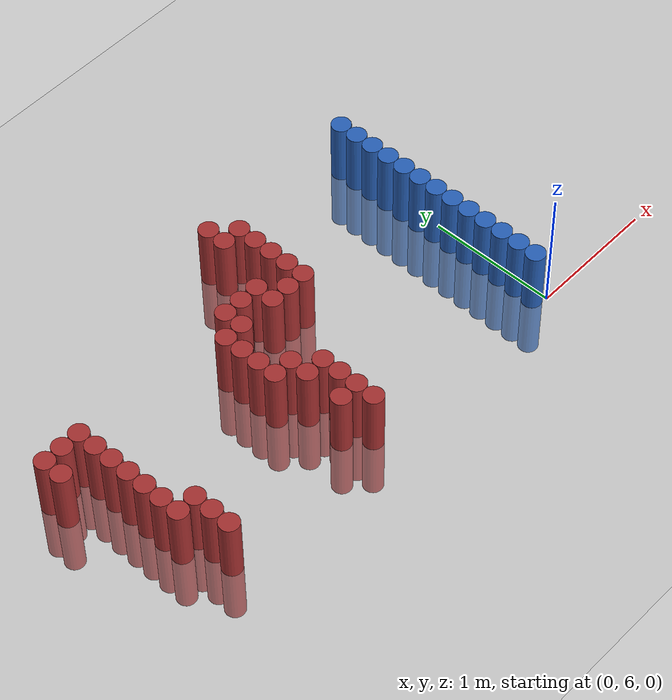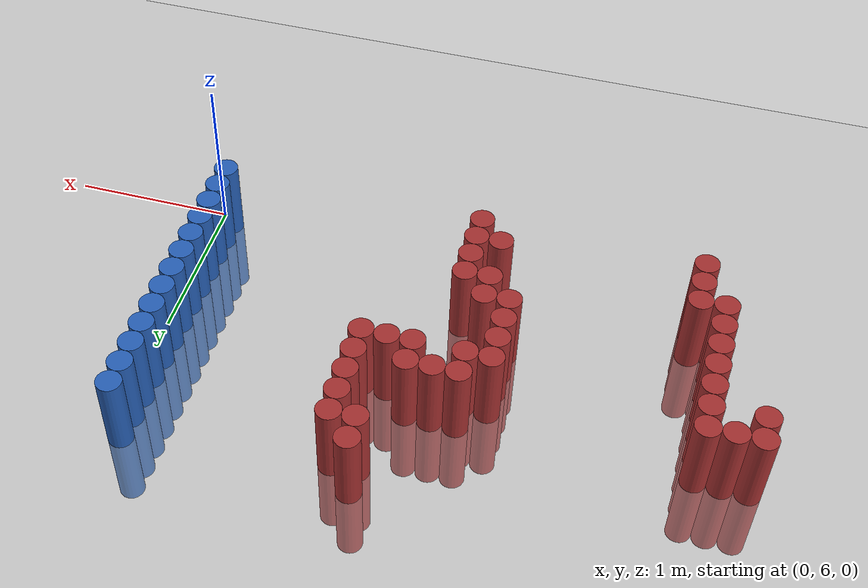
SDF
<sdf version="1.6">
 <world name="default">
  <model name="ground_plane">
   <static>1</static>
   <link name="link">
    <collision name="collision">
     <geometry><plane><normal>0 0 1</normal><size>100 100</size></plane></geometry>
     <surface><friction><ode><mu>100</mu><mu2>50</mu2></ode></friction></surface>
    </collision>
    <visual name="visual">
     <cast_shadows>0</cast_shadows>
     <geometry><plane><normal>0 0 1</normal><size>100 100</size></plane></geometry>
     <material>
      <script><uri>file://media/materials/scripts/gazebo.material</uri><name>Gazebo/Grey</name></script>
     </material>
    </visual>
   </link>
  </model>
  <model name="unit_cylinder_167">
   <static>1</static>
   <pose>-3.525000 7.125000 0.000000 0.000000 0.000000 0.000000</pose>
   <link name="link">
    <inertial>
     <mass>1</mass>
     <inertia><ixx>0.145833</ixx><ixy>0</ixy><ixz>0</ixz><iyy>0.145833</iyy><iyz>0</iyz><izz>0.125</izz></inertia>
    </inertial>
    <collision name="collision">
     <geometry><cylinder><radius>0.075000</radius><length>1</length></cylinder></geometry>
    </collision>
    <visual name="visual">
     <geometry><cylinder><radius>0.075000</radius><length>1</length></cylinder></geometry>
     <material>
      <ambient>0.648000 0.192000 0.192000 1</ambient>
      <diffuse>0.648000 0.192000 0.192000 1</diffuse>
     </material>
     <material>
      <script><name>Gazebo/Grey</name><uri>file://media/materials/scripts/gazebo.material</uri></script>
     </material>
    </visual>
   </link>
  </model>
  <model name="unit_cylinder_168">
   <static>1</static>
   <pose>-3.525000 7.275000 0.000000 0.000000 0.000000 0.000000</pose>
   <link name="link">
    <inertial>
     <mass>1</mass>
     <inertia><ixx>0.145833</ixx><ixy>0</ixy><ixz>0</ixz><iyy>0.145833</iyy><iyz>0</iyz><izz>0.125</izz></inertia>
    </inertial>
    <collision name="collision">
     <geometry><cylinder><radius>0.075000</radius><length>1</length></cylinder></geometry>
    </collision>
    <visual name="visual">
     <geometry><cylinder><radius>0.075000</radius><length>1</length></cylinder></geometry>
     <material>
      <ambient>0.648000 0.192000 0.192000 1</ambient>
      <diffuse>0.648000 0.192000 0.192000 1</diffuse>
     </material>
     <material>
      <script><name>Gazebo/Grey</name><uri>file://media/materials/scripts/gazebo.material</uri></script>
     </material>
    </visual>
   </link>
  </model>
  <model name="unit_cylinder_172">
   <static>1</static>
   <pose>-3.375000 7.275000 0.000000 0.000000 0.000000 0.000000</pose>
   <link name="link">
    <inertial>
     <mass>1</mass>
     <inertia><ixx>0.145833</ixx><ixy>0</ixy><ixz>0</ixz><iyy>0.145833</iyy><iyz>0</iyz><izz>0.125</izz></inertia>
    </inertial>
    <collision name="collision">
     <geometry><cylinder><radius>0.075000</radius><length>1</length></cylinder></geometry>
    </collision>
    <visual name="visual">
     <geometry><cylinder><radius>0.075000</radius><length>1</length></cylinder></geometry>
     <material>
      <ambient>0.648000 0.192000 0.192000 1</ambient>
      <diffuse>0.648000 0.192000 0.192000 1</diffuse>
     </material>
     <material>
      <script><name>Gazebo/Grey</name><uri>file://media/materials/scripts/gazebo.material</uri></script>
     </material>
    </visual>
   </link>
  </model>
  <model name="unit_cylinder_178">
   <static>1</static>
   <pose>-3.225000 6.375000 0.000000 0.000000 0.000000 0.000000</pose>
   <link name="link">
    <inertial>
     <mass>1</mass>
     <inertia><ixx>0.145833</ixx><ixy>0</ixy><ixz>0</ixz><iyy>0.145833</iyy><iyz>0</iyz><izz>0.125</izz></inertia>
    </inertial>
    <collision name="collision">
     <geometry><cylinder><radius>0.075000</radius><length>1</length></cylinder></geometry>
    </collision>
    <visual name="visual">
     <geometry><cylinder><radius>0.075000</radius><length>1</length></cylinder></geometry>
     <material>
      <ambient>0.648000 0.192000 0.192000 1</ambient>
      <diffuse>0.648000 0.192000 0.192000 1</diffuse>
     </material>
     <material>
      <script><name>Gazebo/Grey</name><uri>file://media/materials/scripts/gazebo.material</uri></script>
     </material>
    </visual>
   </link>
  </model>
  <model name="unit_cylinder_179">
   <static>1</static>
   <pose>-3.225000 6.525000 0.000000 0.000000 0.000000 0.000000</pose>
   <link name="link">
    <inertial>
     <mass>1</mass>
     <inertia><ixx>0.145833</ixx><ixy>0</ixy><ixz>0</ixz><iyy>0.145833</iyy><iyz>0</iyz><izz>0.125</izz></inertia>
    </inertial>
    <collision name="collision">
     <geometry><cylinder><radius>0.075000</radius><length>1</length></cylinder></geometry>
    </collision>
    <visual name="visual">
     <geometry><cylinder><radius>0.075000</radius><length>1</length></cylinder></geometry>
     <material>
      <ambient>0.648000 0.192000 0.192000 1</ambient>
      <diffuse>0.648000 0.192000 0.192000 1</diffuse>
     </material>
     <material>
      <script><name>Gazebo/Grey</name><uri>file://media/materials/scripts/gazebo.material</uri></script>
     </material>
    </visual>
   </link>
  </model>
  <model name="unit_cylinder_180">
   <static>1</static>
   <pose>-3.225000 6.675000 0.000000 0.000000 0.000000 0.000000</pose>
   <link name="link">
    <inertial>
     <mass>1</mass>
     <inertia><ixx>0.145833</ixx><ixy>0</ixy><ixz>0</ixz><iyy>0.145833</iyy><iyz>0</iyz><izz>0.125</izz></inertia>
    </inertial>
    <collision name="collision">
     <geometry><cylinder><radius>0.075000</radius><length>1</length></cylinder></geometry>
    </collision>
    <visual name="visual">
     <geometry><cylinder><radius>0.075000</radius><length>1</length></cylinder></geometry>
     <material>
      <ambient>0.648000 0.192000 0.192000 1</ambient>
      <diffuse>0.648000 0.192000 0.192000 1</diffuse>
     </material>
     <material>
      <script><name>Gazebo/Grey</name><uri>file://media/materials/scripts/gazebo.material</uri></script>
     </material>
    </visual>
   </link>
  </model>
  <model name="unit_cylinder_181">
   <static>1</static>
   <pose>-3.225000 6.825000 0.000000 0.000000 0.000000 0.000000</pose>
   <link name="link">
    <inertial>
     <mass>1</mass>
     <inertia><ixx>0.145833</ixx><ixy>0</ixy><ixz>0</ixz><iyy>0.145833</iyy><iyz>0</iyz><izz>0.125</izz></inertia>
    </inertial>
    <collision name="collision">
     <geometry><cylinder><radius>0.075000</radius><length>1</length></cylinder></geometry>
    </collision>
    <visual name="visual">
     <geometry><cylinder><radius>0.075000</radius><length>1</length></cylinder></geometry>
     <material>
      <ambient>0.648000 0.192000 0.192000 1</ambient>
      <diffuse>0.648000 0.192000 0.192000 1</diffuse>
     </material>
     <material>
      <script><name>Gazebo/Grey</name><uri>file://media/materials/scripts/gazebo.material</uri></script>
     </material>
    </visual>
   </link>
  </model>
  <model name="unit_cylinder_182">
   <static>1</static>
   <pose>-3.225000 6.975000 0.000000 0.000000 0.000000 0.000000</pose>
   <link name="link">
    <inertial>
     <mass>1</mass>
     <inertia><ixx>0.145833</ixx><ixy>0</ixy><ixz>0</ixz><iyy>0.145833</iyy><iyz>0</iyz><izz>0.125</izz></inertia>
    </inertial>
    <collision name="collision">
     <geometry><cylinder><radius>0.075000</radius><length>1</length></cylinder></geometry>
    </collision>
    <visual name="visual">
     <geometry><cylinder><radius>0.075000</radius><length>1</length></cylinder></geometry>
     <material>
      <ambient>0.648000 0.192000 0.192000 1</ambient>
      <diffuse>0.648000 0.192000 0.192000 1</diffuse>
     </material>
     <material>
      <script><name>Gazebo/Grey</name><uri>file://media/materials/scripts/gazebo.material</uri></script>
     </material>
    </visual>
   </link>
  </model>
  <model name="unit_cylinder_183">
   <static>1</static>
   <pose>-3.225000 7.125000 0.000000 0.000000 0.000000 0.000000</pose>
   <link name="link">
    <inertial>
     <mass>1</mass>
     <inertia><ixx>0.145833</ixx><ixy>0</ixy><ixz>0</ixz><iyy>0.145833</iyy><iyz>0</iyz><izz>0.125</izz></inertia>
    </inertial>
    <collision name="collision">
     <geometry><cylinder><radius>0.075000</radius><length>1</length></cylinder></geometry>
    </collision>
    <visual name="visual">
     <geometry><cylinder><radius>0.075000</radius><length>1</length></cylinder></geometry>
     <material>
      <ambient>0.648000 0.192000 0.192000 1</ambient>
      <diffuse>0.648000 0.192000 0.192000 1</diffuse>
     </material>
     <material>
      <script><name>Gazebo/Grey</name><uri>file://media/materials/scripts/gazebo.material</uri></script>
     </material>
    </visual>
   </link>
  </model>
  <model name="unit_cylinder_184">
   <static>1</static>
   <pose>-3.225000 7.275000 0.000000 0.000000 0.000000 0.000000</pose>
   <link name="link">
    <inertial>
     <mass>1</mass>
     <inertia><ixx>0.145833</ixx><ixy>0</ixy><ixz>0</ixz><iyy>0.145833</iyy><iyz>0</iyz><izz>0.125</izz></inertia>
    </inertial>
    <collision name="collision">
     <geometry><cylinder><radius>0.075000</radius><length>1</length></cylinder></geometry>
    </collision>
    <visual name="visual">
     <geometry><cylinder><radius>0.075000</radius><length>1</length></cylinder></geometry>
     <material>
      <ambient>0.648000 0.192000 0.192000 1</ambient>
      <diffuse>0.648000 0.192000 0.192000 1</diffuse>
     </material>
     <material>
      <script><name>Gazebo/Grey</name><uri>file://media/materials/scripts/gazebo.material</uri></script>
     </material>
    </visual>
   </link>
  </model>
  <model name="unit_cylinder_193">
   <static>1</static>
   <pose>-3.075000 6.075000 0.000000 0.000000 0.000000 0.000000</pose>
   <link name="link">
    <inertial>
     <mass>1</mass>
     <inertia><ixx>0.145833</ixx><ixy>0</ixy><ixz>0</ixz><iyy>0.145833</iyy><iyz>0</iyz><izz>0.125</izz></inertia>
    </inertial>
    <collision name="collision">
     <geometry><cylinder><radius>0.075000</radius><length>1</length></cylinder></geometry>
    </collision>
    <visual name="visual">
     <geometry><cylinder><radius>0.075000</radius><length>1</length></cylinder></geometry>
     <material>
      <ambient>0.648000 0.192000 0.192000 1</ambient>
      <diffuse>0.648000 0.192000 0.192000 1</diffuse>
     </material>
     <material>
      <script><name>Gazebo/Grey</name><uri>file://media/materials/scripts/gazebo.material</uri></script>
     </material>
    </visual>
   </link>
  </model>
  <model name="unit_cylinder_194">
   <static>1</static>
   <pose>-3.075000 6.225000 0.000000 0.000000 0.000000 0.000000</pose>
   <link name="link">
    <inertial>
     <mass>1</mass>
     <inertia><ixx>0.145833</ixx><ixy>0</ixy><ixz>0</ixz><iyy>0.145833</iyy><iyz>0</iyz><izz>0.125</izz></inertia>
    </inertial>
    <collision name="collision">
     <geometry><cylinder><radius>0.075000</radius><length>1</length></cylinder></geometry>
    </collision>
    <visual name="visual">
     <geometry><cylinder><radius>0.075000</radius><length>1</length></cylinder></geometry>
     <material>
      <ambient>0.648000 0.192000 0.192000 1</ambient>
      <diffuse>0.648000 0.192000 0.192000 1</diffuse>
     </material>
     <material>
      <script><name>Gazebo/Grey</name><uri>file://media/materials/scripts/gazebo.material</uri></script>
     </material>
    </visual>
   </link>
  </model>
  <model name="unit_cylinder_195">
   <static>1</static>
   <pose>-3.075000 6.375000 0.000000 0.000000 0.000000 0.000000</pose>
   <link name="link">
    <inertial>
     <mass>1</mass>
     <inertia><ixx>0.145833</ixx><ixy>0</ixy><ixz>0</ixz><iyy>0.145833</iyy><iyz>0</iyz><izz>0.125</izz></inertia>
    </inertial>
    <collision name="collision">
     <geometry><cylinder><radius>0.075000</radius><length>1</length></cylinder></geometry>
    </collision>
    <visual name="visual">
     <geometry><cylinder><radius>0.075000</radius><length>1</length></cylinder></geometry>
     <material>
      <ambient>0.648000 0.192000 0.192000 1</ambient>
      <diffuse>0.648000 0.192000 0.192000 1</diffuse>
     </material>
     <material>
      <script><name>Gazebo/Grey</name><uri>file://media/materials/scripts/gazebo.material</uri></script>
     </material>
    </visual>
   </link>
  </model>
  <model name="unit_cylinder_205">
   <static>1</static>
   <pose>-2.025000 6.675000 0.000000 0.000000 0.000000 0.000000</pose>
   <link name="link">
    <inertial>
     <mass>1</mass>
     <inertia><ixx>0.145833</ixx><ixy>0</ixy><ixz>0</ixz><iyy>0.145833</iyy><iyz>0</iyz><izz>0.125</izz></inertia>
    </inertial>
    <collision name="collision">
     <geometry><cylinder><radius>0.075000</radius><length>1</length></cylinder></geometry>
    </collision>
    <visual name="visual">
     <geometry><cylinder><radius>0.075000</radius><length>1</length></cylinder></geometry>
     <material>
      <ambient>0.648000 0.192000 0.192000 1</ambient>
      <diffuse>0.648000 0.192000 0.192000 1</diffuse>
     </material>
     <material>
      <script><name>Gazebo/Grey</name><uri>file://media/materials/scripts/gazebo.material</uri></script>
     </material>
    </visual>
   </link>
  </model>
  <model name="unit_cylinder_206">
   <static>1</static>
   <pose>-2.025000 6.825000 0.000000 0.000000 0.000000 0.000000</pose>
   <link name="link">
    <inertial>
     <mass>1</mass>
     <inertia><ixx>0.145833</ixx><ixy>0</ixy><ixz>0</ixz><iyy>0.145833</iyy><iyz>0</iyz><izz>0.125</izz></inertia>
    </inertial>
    <collision name="collision">
     <geometry><cylinder><radius>0.075000</radius><length>1</length></cylinder></geometry>
    </collision>
    <visual name="visual">
     <geometry><cylinder><radius>0.075000</radius><length>1</length></cylinder></geometry>
     <material>
      <ambient>0.648000 0.192000 0.192000 1</ambient>
      <diffuse>0.648000 0.192000 0.192000 1</diffuse>
     </material>
     <material>
      <script><name>Gazebo/Grey</name><uri>file://media/materials/scripts/gazebo.material</uri></script>
     </material>
    </visual>
   </link>
  </model>
  <model name="unit_cylinder_207">
   <static>1</static>
   <pose>-2.025000 6.975000 0.000000 0.000000 0.000000 0.000000</pose>
   <link name="link">
    <inertial>
     <mass>1</mass>
     <inertia><ixx>0.145833</ixx><ixy>0</ixy><ixz>0</ixz><iyy>0.145833</iyy><iyz>0</iyz><izz>0.125</izz></inertia>
    </inertial>
    <collision name="collision">
     <geometry><cylinder><radius>0.075000</radius><length>1</length></cylinder></geometry>
    </collision>
    <visual name="visual">
     <geometry><cylinder><radius>0.075000</radius><length>1</length></cylinder></geometry>
     <material>
      <ambient>0.648000 0.192000 0.192000 1</ambient>
      <diffuse>0.648000 0.192000 0.192000 1</diffuse>
     </material>
     <material>
      <script><name>Gazebo/Grey</name><uri>file://media/materials/scripts/gazebo.material</uri></script>
     </material>
    </visual>
   </link>
  </model>
  <model name="unit_cylinder_208">
   <static>1</static>
   <pose>-2.025000 7.125000 0.000000 0.000000 0.000000 0.000000</pose>
   <link name="link">
    <inertial>
     <mass>1</mass>
     <inertia><ixx>0.145833</ixx><ixy>0</ixy><ixz>0</ixz><iyy>0.145833</iyy><iyz>0</iyz><izz>0.125</izz></inertia>
    </inertial>
    <collision name="collision">
     <geometry><cylinder><radius>0.075000</radius><length>1</length></cylinder></geometry>
    </collision>
    <visual name="visual">
     <geometry><cylinder><radius>0.075000</radius><length>1</length></cylinder></geometry>
     <material>
      <ambient>0.648000 0.192000 0.192000 1</ambient>
      <diffuse>0.648000 0.192000 0.192000 1</diffuse>
     </material>
     <material>
      <script><name>Gazebo/Grey</name><uri>file://media/materials/scripts/gazebo.material</uri></script>
     </material>
    </visual>
   </link>
  </model>
  <model name="unit_cylinder_213">
   <static>1</static>
   <pose>-1.875000 6.225000 0.000000 0.000000 0.000000 0.000000</pose>
   <link name="link">
    <inertial>
     <mass>1</mass>
     <inertia><ixx>0.145833</ixx><ixy>0</ixy><ixz>0</ixz><iyy>0.145833</iyy><iyz>0</iyz><izz>0.125</izz></inertia>
    </inertial>
    <collision name="collision">
     <geometry><cylinder><radius>0.075000</radius><length>1</length></cylinder></geometry>
    </collision>
    <visual name="visual">
     <geometry><cylinder><radius>0.075000</radius><length>1</length></cylinder></geometry>
     <material>
      <ambient>0.648000 0.192000 0.192000 1</ambient>
      <diffuse>0.648000 0.192000 0.192000 1</diffuse>
     </material>
     <material>
      <script><name>Gazebo/Grey</name><uri>file://media/materials/scripts/gazebo.material</uri></script>
     </material>
    </visual>
   </link>
  </model>
  <model name="unit_cylinder_214">
   <static>1</static>
   <pose>-1.875000 6.525000 0.000000 0.000000 0.000000 0.000000</pose>
   <link name="link">
    <inertial>
     <mass>1</mass>
     <inertia><ixx>0.145833</ixx><ixy>0</ixy><ixz>0</ixz><iyy>0.145833</iyy><iyz>0</iyz><izz>0.125</izz></inertia>
    </inertial>
    <collision name="collision">
     <geometry><cylinder><radius>0.075000</radius><length>1</length></cylinder></geometry>
    </collision>
    <visual name="visual">
     <geometry><cylinder><radius>0.075000</radius><length>1</length></cylinder></geometry>
     <material>
      <ambient>0.648000 0.192000 0.192000 1</ambient>
      <diffuse>0.648000 0.192000 0.192000 1</diffuse>
     </material>
     <material>
      <script><name>Gazebo/Grey</name><uri>file://media/materials/scripts/gazebo.material</uri></script>
     </material>
    </visual>
   </link>
  </model>
  <model name="unit_cylinder_215">
   <static>1</static>
   <pose>-1.875000 6.675000 0.000000 0.000000 0.000000 0.000000</pose>
   <link name="link">
    <inertial>
     <mass>1</mass>
     <inertia><ixx>0.145833</ixx><ixy>0</ixy><ixz>0</ixz><iyy>0.145833</iyy><iyz>0</iyz><izz>0.125</izz></inertia>
    </inertial>
    <collision name="collision">
     <geometry><cylinder><radius>0.075000</radius><length>1</length></cylinder></geometry>
    </collision>
    <visual name="visual">
     <geometry><cylinder><radius>0.075000</radius><length>1</length></cylinder></geometry>
     <material>
      <ambient>0.648000 0.192000 0.192000 1</ambient>
      <diffuse>0.648000 0.192000 0.192000 1</diffuse>
     </material>
     <material>
      <script><name>Gazebo/Grey</name><uri>file://media/materials/scripts/gazebo.material</uri></script>
     </material>
    </visual>
   </link>
  </model>
  <model name="unit_cylinder_216">
   <static>1</static>
   <pose>-1.875000 7.125000 0.000000 0.000000 0.000000 0.000000</pose>
   <link name="link">
    <inertial>
     <mass>1</mass>
     <inertia><ixx>0.145833</ixx><ixy>0</ixy><ixz>0</ixz><iyy>0.145833</iyy><iyz>0</iyz><izz>0.125</izz></inertia>
    </inertial>
    <collision name="collision">
     <geometry><cylinder><radius>0.075000</radius><length>1</length></cylinder></geometry>
    </collision>
    <visual name="visual">
     <geometry><cylinder><radius>0.075000</radius><length>1</length></cylinder></geometry>
     <material>
      <ambient>0.648000 0.192000 0.192000 1</ambient>
      <diffuse>0.648000 0.192000 0.192000 1</diffuse>
     </material>
     <material>
      <script><name>Gazebo/Grey</name><uri>file://media/materials/scripts/gazebo.material</uri></script>
     </material>
    </visual>
   </link>
  </model>
  <model name="unit_cylinder_217">
   <static>1</static>
   <pose>-1.875000 7.275000 0.000000 0.000000 0.000000 0.000000</pose>
   <link name="link">
    <inertial>
     <mass>1</mass>
     <inertia><ixx>0.145833</ixx><ixy>0</ixy><ixz>0</ixz><iyy>0.145833</iyy><iyz>0</iyz><izz>0.125</izz></inertia>
    </inertial>
    <collision name="collision">
     <geometry><cylinder><radius>0.075000</radius><length>1</length></cylinder></geometry>
    </collision>
    <visual name="visual">
     <geometry><cylinder><radius>0.075000</radius><length>1</length></cylinder></geometry>
     <material>
      <ambient>0.648000 0.192000 0.192000 1</ambient>
      <diffuse>0.648000 0.192000 0.192000 1</diffuse>
     </material>
     <material>
      <script><name>Gazebo/Grey</name><uri>file://media/materials/scripts/gazebo.material</uri></script>
     </material>
    </visual>
   </link>
  </model>
  <model name="unit_cylinder_222">
   <static>1</static>
   <pose>-1.725000 6.075000 0.000000 0.000000 0.000000 0.000000</pose>
   <link name="link">
    <inertial>
     <mass>1</mass>
     <inertia><ixx>0.145833</ixx><ixy>0</ixy><ixz>0</ixz><iyy>0.145833</iyy><iyz>0</iyz><izz>0.125</izz></inertia>
    </inertial>
    <collision name="collision">
     <geometry><cylinder><radius>0.075000</radius><length>1</length></cylinder></geometry>
    </collision>
    <visual name="visual">
     <geometry><cylinder><radius>0.075000</radius><length>1</length></cylinder></geometry>
     <material>
      <ambient>0.648000 0.192000 0.192000 1</ambient>
      <diffuse>0.648000 0.192000 0.192000 1</diffuse>
     </material>
     <material>
      <script><name>Gazebo/Grey</name><uri>file://media/materials/scripts/gazebo.material</uri></script>
     </material>
    </visual>
   </link>
  </model>
  <model name="unit_cylinder_223">
   <static>1</static>
   <pose>-1.725000 6.225000 0.000000 0.000000 0.000000 0.000000</pose>
   <link name="link">
    <inertial>
     <mass>1</mass>
     <inertia><ixx>0.145833</ixx><ixy>0</ixy><ixz>0</ixz><iyy>0.145833</iyy><iyz>0</iyz><izz>0.125</izz></inertia>
    </inertial>
    <collision name="collision">
     <geometry><cylinder><radius>0.075000</radius><length>1</length></cylinder></geometry>
    </collision>
    <visual name="visual">
     <geometry><cylinder><radius>0.075000</radius><length>1</length></cylinder></geometry>
     <material>
      <ambient>0.648000 0.192000 0.192000 1</ambient>
      <diffuse>0.648000 0.192000 0.192000 1</diffuse>
     </material>
     <material>
      <script><name>Gazebo/Grey</name><uri>file://media/materials/scripts/gazebo.material</uri></script>
     </material>
    </visual>
   </link>
  </model>
  <model name="unit_cylinder_224">
   <static>1</static>
   <pose>-1.725000 6.375000 0.000000 0.000000 0.000000 0.000000</pose>
   <link name="link">
    <inertial>
     <mass>1</mass>
     <inertia><ixx>0.145833</ixx><ixy>0</ixy><ixz>0</ixz><iyy>0.145833</iyy><iyz>0</iyz><izz>0.125</izz></inertia>
    </inertial>
    <collision name="collision">
     <geometry><cylinder><radius>0.075000</radius><length>1</length></cylinder></geometry>
    </collision>
    <visual name="visual">
     <geometry><cylinder><radius>0.075000</radius><length>1</length></cylinder></geometry>
     <material>
      <ambient>0.648000 0.192000 0.192000 1</ambient>
      <diffuse>0.648000 0.192000 0.192000 1</diffuse>
     </material>
     <material>
      <script><name>Gazebo/Grey</name><uri>file://media/materials/scripts/gazebo.material</uri></script>
     </material>
    </visual>
   </link>
  </model>
  <model name="unit_cylinder_225">
   <static>1</static>
   <pose>-1.725000 6.525000 0.000000 0.000000 0.000000 0.000000</pose>
   <link name="link">
    <inertial>
     <mass>1</mass>
     <inertia><ixx>0.145833</ixx><ixy>0</ixy><ixz>0</ixz><iyy>0.145833</iyy><iyz>0</iyz><izz>0.125</izz></inertia>
    </inertial>
    <collision name="collision">
     <geometry><cylinder><radius>0.075000</radius><length>1</length></cylinder></geometry>
    </collision>
    <visual name="visual">
     <geometry><cylinder><radius>0.075000</radius><length>1</length></cylinder></geometry>
     <material>
      <ambient>0.648000 0.192000 0.192000 1</ambient>
      <diffuse>0.648000 0.192000 0.192000 1</diffuse>
     </material>
     <material>
      <script><name>Gazebo/Grey</name><uri>file://media/materials/scripts/gazebo.material</uri></script>
     </material>
    </visual>
   </link>
  </model>
  <model name="unit_cylinder_226">
   <static>1</static>
   <pose>-1.725000 7.275000 0.000000 0.000000 0.000000 0.000000</pose>
   <link name="link">
    <inertial>
     <mass>1</mass>
     <inertia><ixx>0.145833</ixx><ixy>0</ixy><ixz>0</ixz><iyy>0.145833</iyy><iyz>0</iyz><izz>0.125</izz></inertia>
    </inertial>
    <collision name="collision">
     <geometry><cylinder><radius>0.075000</radius><length>1</length></cylinder></geometry>
    </collision>
    <visual name="visual">
     <geometry><cylinder><radius>0.075000</radius><length>1</length></cylinder></geometry>
     <material>
      <ambient>0.648000 0.192000 0.192000 1</ambient>
      <diffuse>0.648000 0.192000 0.192000 1</diffuse>
     </material>
     <material>
      <script><name>Gazebo/Grey</name><uri>file://media/materials/scripts/gazebo.material</uri></script>
     </material>
    </visual>
   </link>
  </model>
  <model name="unit_cylinder_230">
   <static>1</static>
   <pose>-1.575000 7.125000 0.000000 0.000000 0.000000 0.000000</pose>
   <link name="link">
    <inertial>
     <mass>1</mass>
     <inertia><ixx>0.145833</ixx><ixy>0</ixy><ixz>0</ixz><iyy>0.145833</iyy><iyz>0</iyz><izz>0.125</izz></inertia>
    </inertial>
    <collision name="collision">
     <geometry><cylinder><radius>0.075000</radius><length>1</length></cylinder></geometry>
    </collision>
    <visual name="visual">
     <geometry><cylinder><radius>0.075000</radius><length>1</length></cylinder></geometry>
     <material>
      <ambient>0.648000 0.192000 0.192000 1</ambient>
      <diffuse>0.648000 0.192000 0.192000 1</diffuse>
     </material>
     <material>
      <script><name>Gazebo/Grey</name><uri>file://media/materials/scripts/gazebo.material</uri></script>
     </material>
    </visual>
   </link>
  </model>
  <model name="unit_cylinder_231">
   <static>1</static>
   <pose>-1.575000 7.275000 0.000000 0.000000 0.000000 0.000000</pose>
   <link name="link">
    <inertial>
     <mass>1</mass>
     <inertia><ixx>0.145833</ixx><ixy>0</ixy><ixz>0</ixz><iyy>0.145833</iyy><iyz>0</iyz><izz>0.125</izz></inertia>
    </inertial>
    <collision name="collision">
     <geometry><cylinder><radius>0.075000</radius><length>1</length></cylinder></geometry>
    </collision>
    <visual name="visual">
     <geometry><cylinder><radius>0.075000</radius><length>1</length></cylinder></geometry>
     <material>
      <ambient>0.648000 0.192000 0.192000 1</ambient>
      <diffuse>0.648000 0.192000 0.192000 1</diffuse>
     </material>
     <material>
      <script><name>Gazebo/Grey</name><uri>file://media/materials/scripts/gazebo.material</uri></script>
     </material>
    </visual>
   </link>
  </model>
  <model name="unit_cylinder_238">
   <static>1</static>
   <pose>-1.425000 7.125000 0.000000 0.000000 0.000000 0.000000</pose>
   <link name="link">
    <inertial>
     <mass>1</mass>
     <inertia><ixx>0.145833</ixx><ixy>0</ixy><ixz>0</ixz><iyy>0.145833</iyy><iyz>0</iyz><izz>0.125</izz></inertia>
    </inertial>
    <collision name="collision">
     <geometry><cylinder><radius>0.075000</radius><length>1</length></cylinder></geometry>
    </collision>
    <visual name="visual">
     <geometry><cylinder><radius>0.075000</radius><length>1</length></cylinder></geometry>
     <material>
      <ambient>0.648000 0.192000 0.192000 1</ambient>
      <diffuse>0.648000 0.192000 0.192000 1</diffuse>
     </material>
     <material>
      <script><name>Gazebo/Grey</name><uri>file://media/materials/scripts/gazebo.material</uri></script>
     </material>
    </visual>
   </link>
  </model>
  <model name="unit_cylinder_239">
   <static>1</static>
   <pose>-1.425000 7.725000 0.000000 0.000000 0.000000 0.000000</pose>
   <link name="link">
    <inertial>
     <mass>1</mass>
     <inertia><ixx>0.145833</ixx><ixy>0</ixy><ixz>0</ixz><iyy>0.145833</iyy><iyz>0</iyz><izz>0.125</izz></inertia>
    </inertial>
    <collision name="collision">
     <geometry><cylinder><radius>0.075000</radius><length>1</length></cylinder></geometry>
    </collision>
    <visual name="visual">
     <geometry><cylinder><radius>0.075000</radius><length>1</length></cylinder></geometry>
     <material>
      <ambient>0.648000 0.192000 0.192000 1</ambient>
      <diffuse>0.648000 0.192000 0.192000 1</diffuse>
     </material>
     <material>
      <script><name>Gazebo/Grey</name><uri>file://media/materials/scripts/gazebo.material</uri></script>
     </material>
    </visual>
   </link>
  </model>
  <model name="unit_cylinder_240">
   <static>1</static>
   <pose>-1.425000 7.875000 0.000000 0.000000 0.000000 0.000000</pose>
   <link name="link">
    <inertial>
     <mass>1</mass>
     <inertia><ixx>0.145833</ixx><ixy>0</ixy><ixz>0</ixz><iyy>0.145833</iyy><iyz>0</iyz><izz>0.125</izz></inertia>
    </inertial>
    <collision name="collision">
     <geometry><cylinder><radius>0.075000</radius><length>1</length></cylinder></geometry>
    </collision>
    <visual name="visual">
     <geometry><cylinder><radius>0.075000</radius><length>1</length></cylinder></geometry>
     <material>
      <ambient>0.648000 0.192000 0.192000 1</ambient>
      <diffuse>0.648000 0.192000 0.192000 1</diffuse>
     </material>
     <material>
      <script><name>Gazebo/Grey</name><uri>file://media/materials/scripts/gazebo.material</uri></script>
     </material>
    </visual>
   </link>
  </model>
  <model name="unit_cylinder_250">
   <static>1</static>
   <pose>-1.275000 7.125000 0.000000 0.000000 0.000000 0.000000</pose>
   <link name="link">
    <inertial>
     <mass>1</mass>
     <inertia><ixx>0.145833</ixx><ixy>0</ixy><ixz>0</ixz><iyy>0.145833</iyy><iyz>0</iyz><izz>0.125</izz></inertia>
    </inertial>
    <collision name="collision">
     <geometry><cylinder><radius>0.075000</radius><length>1</length></cylinder></geometry>
    </collision>
    <visual name="visual">
     <geometry><cylinder><radius>0.075000</radius><length>1</length></cylinder></geometry>
     <material>
      <ambient>0.648000 0.192000 0.192000 1</ambient>
      <diffuse>0.648000 0.192000 0.192000 1</diffuse>
     </material>
     <material>
      <script><name>Gazebo/Grey</name><uri>file://media/materials/scripts/gazebo.material</uri></script>
     </material>
    </visual>
   </link>
  </model>
  <model name="unit_cylinder_251">
   <static>1</static>
   <pose>-1.275000 7.275000 0.000000 0.000000 0.000000 0.000000</pose>
   <link name="link">
    <inertial>
     <mass>1</mass>
     <inertia><ixx>0.145833</ixx><ixy>0</ixy><ixz>0</ixz><iyy>0.145833</iyy><iyz>0</iyz><izz>0.125</izz></inertia>
    </inertial>
    <collision name="collision">
     <geometry><cylinder><radius>0.075000</radius><length>1</length></cylinder></geometry>
    </collision>
    <visual name="visual">
     <geometry><cylinder><radius>0.075000</radius><length>1</length></cylinder></geometry>
     <material>
      <ambient>0.648000 0.192000 0.192000 1</ambient>
      <diffuse>0.648000 0.192000 0.192000 1</diffuse>
     </material>
     <material>
      <script><name>Gazebo/Grey</name><uri>file://media/materials/scripts/gazebo.material</uri></script>
     </material>
    </visual>
   </link>
  </model>
  <model name="unit_cylinder_252">
   <static>1</static>
   <pose>-1.275000 7.425000 0.000000 0.000000 0.000000 0.000000</pose>
   <link name="link">
    <inertial>
     <mass>1</mass>
     <inertia><ixx>0.145833</ixx><ixy>0</ixy><ixz>0</ixz><iyy>0.145833</iyy><iyz>0</iyz><izz>0.125</izz></inertia>
    </inertial>
    <collision name="collision">
     <geometry><cylinder><radius>0.075000</radius><length>1</length></cylinder></geometry>
    </collision>
    <visual name="visual">
     <geometry><cylinder><radius>0.075000</radius><length>1</length></cylinder></geometry>
     <material>
      <ambient>0.648000 0.192000 0.192000 1</ambient>
      <diffuse>0.648000 0.192000 0.192000 1</diffuse>
     </material>
     <material>
      <script><name>Gazebo/Grey</name><uri>file://media/materials/scripts/gazebo.material</uri></script>
     </material>
    </visual>
   </link>
  </model>
  <model name="unit_cylinder_253">
   <static>1</static>
   <pose>-1.275000 7.575000 0.000000 0.000000 0.000000 0.000000</pose>
   <link name="link">
    <inertial>
     <mass>1</mass>
     <inertia><ixx>0.145833</ixx><ixy>0</ixy><ixz>0</ixz><iyy>0.145833</iyy><iyz>0</iyz><izz>0.125</izz></inertia>
    </inertial>
    <collision name="collision">
     <geometry><cylinder><radius>0.075000</radius><length>1</length></cylinder></geometry>
    </collision>
    <visual name="visual">
     <geometry><cylinder><radius>0.075000</radius><length>1</length></cylinder></geometry>
     <material>
      <ambient>0.648000 0.192000 0.192000 1</ambient>
      <diffuse>0.648000 0.192000 0.192000 1</diffuse>
     </material>
     <material>
      <script><name>Gazebo/Grey</name><uri>file://media/materials/scripts/gazebo.material</uri></script>
     </material>
    </visual>
   </link>
  </model>
  <model name="unit_cylinder_254">
   <static>1</static>
   <pose>-1.275000 7.725000 0.000000 0.000000 0.000000 0.000000</pose>
   <link name="link">
    <inertial>
     <mass>1</mass>
     <inertia><ixx>0.145833</ixx><ixy>0</ixy><ixz>0</ixz><iyy>0.145833</iyy><iyz>0</iyz><izz>0.125</izz></inertia>
    </inertial>
    <collision name="collision">
     <geometry><cylinder><radius>0.075000</radius><length>1</length></cylinder></geometry>
    </collision>
    <visual name="visual">
     <geometry><cylinder><radius>0.075000</radius><length>1</length></cylinder></geometry>
     <material>
      <ambient>0.648000 0.192000 0.192000 1</ambient>
      <diffuse>0.648000 0.192000 0.192000 1</diffuse>
     </material>
     <material>
      <script><name>Gazebo/Grey</name><uri>file://media/materials/scripts/gazebo.material</uri></script>
     </material>
    </visual>
   </link>
  </model>
  <model name="unit_cylinder_276">
   <static>1</static>
   <pose>-0.075000 6.075000 0.000000 0.000000 0.000000 0.000000</pose>
   <link name="link">
    <inertial>
     <mass>1</mass>
     <inertia><ixx>0.145833</ixx><ixy>0</ixy><ixz>0</ixz><iyy>0.145833</iyy><iyz>0</iyz><izz>0.125</izz></inertia>
    </inertial>
    <collision name="collision">
     <geometry><cylinder><radius>0.075000</radius><length>1</length></cylinder></geometry>
    </collision>
    <visual name="visual">
     <geometry><cylinder><radius>0.075000</radius><length>1</length></cylinder></geometry>
     <material>
      <ambient>0.152000 0.379000 0.720000 1</ambient>
      <diffuse>0.152000 0.379000 0.720000 1</diffuse>
     </material>
     <material>
      <script><name>Gazebo/Grey</name><uri>file://media/materials/scripts/gazebo.material</uri></script>
     </material>
    </visual>
   </link>
  </model>
  <model name="unit_cylinder_277">
   <static>1</static>
   <pose>-0.075000 6.225000 0.000000 0.000000 0.000000 0.000000</pose>
   <link name="link">
    <inertial>
     <mass>1</mass>
     <inertia><ixx>0.145833</ixx><ixy>0</ixy><ixz>0</ixz><iyy>0.145833</iyy><iyz>0</iyz><izz>0.125</izz></inertia>
    </inertial>
    <collision name="collision">
     <geometry><cylinder><radius>0.075000</radius><length>1</length></cylinder></geometry>
    </collision>
    <visual name="visual">
     <geometry><cylinder><radius>0.075000</radius><length>1</length></cylinder></geometry>
     <material>
      <ambient>0.152000 0.379000 0.720000 1</ambient>
      <diffuse>0.152000 0.379000 0.720000 1</diffuse>
     </material>
     <material>
      <script><name>Gazebo/Grey</name><uri>file://media/materials/scripts/gazebo.material</uri></script>
     </material>
    </visual>
   </link>
  </model>
  <model name="unit_cylinder_278">
   <static>1</static>
   <pose>-0.075000 6.375000 0.000000 0.000000 0.000000 0.000000</pose>
   <link name="link">
    <inertial>
     <mass>1</mass>
     <inertia><ixx>0.145833</ixx><ixy>0</ixy><ixz>0</ixz><iyy>0.145833</iyy><iyz>0</iyz><izz>0.125</izz></inertia>
    </inertial>
    <collision name="collision">
     <geometry><cylinder><radius>0.075000</radius><length>1</length></cylinder></geometry>
    </collision>
    <visual name="visual">
     <geometry><cylinder><radius>0.075000</radius><length>1</length></cylinder></geometry>
     <material>
      <ambient>0.152000 0.379000 0.720000 1</ambient>
      <diffuse>0.152000 0.379000 0.720000 1</diffuse>
     </material>
     <material>
      <script><name>Gazebo/Grey</name><uri>file://media/materials/scripts/gazebo.material</uri></script>
     </material>
    </visual>
   </link>
  </model>
  <model name="unit_cylinder_279">
   <static>1</static>
   <pose>-0.075000 6.525000 0.000000 0.000000 0.000000 0.000000</pose>
   <link name="link">
    <inertial>
     <mass>1</mass>
     <inertia><ixx>0.145833</ixx><ixy>0</ixy><ixz>0</ixz><iyy>0.145833</iyy><iyz>0</iyz><izz>0.125</izz></inertia>
    </inertial>
    <collision name="collision">
     <geometry><cylinder><radius>0.075000</radius><length>1</length></cylinder></geometry>
    </collision>
    <visual name="visual">
     <geometry><cylinder><radius>0.075000</radius><length>1</length></cylinder></geometry>
     <material>
      <ambient>0.152000 0.379000 0.720000 1</ambient>
      <diffuse>0.152000 0.379000 0.720000 1</diffuse>
     </material>
     <material>
      <script><name>Gazebo/Grey</name><uri>file://media/materials/scripts/gazebo.material</uri></script>
     </material>
    </visual>
   </link>
  </model>
  <model name="unit_cylinder_280">
   <static>1</static>
   <pose>-0.075000 6.675000 0.000000 0.000000 0.000000 0.000000</pose>
   <link name="link">
    <inertial>
     <mass>1</mass>
     <inertia><ixx>0.145833</ixx><ixy>0</ixy><ixz>0</ixz><iyy>0.145833</iyy><iyz>0</iyz><izz>0.125</izz></inertia>
    </inertial>
    <collision name="collision">
     <geometry><cylinder><radius>0.075000</radius><length>1</length></cylinder></geometry>
    </collision>
    <visual name="visual">
     <geometry><cylinder><radius>0.075000</radius><length>1</length></cylinder></geometry>
     <material>
      <ambient>0.152000 0.379000 0.720000 1</ambient>
      <diffuse>0.152000 0.379000 0.720000 1</diffuse>
     </material>
     <material>
      <script><name>Gazebo/Grey</name><uri>file://media/materials/scripts/gazebo.material</uri></script>
     </material>
    </visual>
   </link>
  </model>
  <model name="unit_cylinder_281">
   <static>1</static>
   <pose>-0.075000 6.825000 0.000000 0.000000 0.000000 0.000000</pose>
   <link name="link">
    <inertial>
     <mass>1</mass>
     <inertia><ixx>0.145833</ixx><ixy>0</ixy><ixz>0</ixz><iyy>0.145833</iyy><iyz>0</iyz><izz>0.125</izz></inertia>
    </inertial>
    <collision name="collision">
     <geometry><cylinder><radius>0.075000</radius><length>1</length></cylinder></geometry>
    </collision>
    <visual name="visual">
     <geometry><cylinder><radius>0.075000</radius><length>1</length></cylinder></geometry>
     <material>
      <ambient>0.152000 0.379000 0.720000 1</ambient>
      <diffuse>0.152000 0.379000 0.720000 1</diffuse>
     </material>
     <material>
      <script><name>Gazebo/Grey</name><uri>file://media/materials/scripts/gazebo.material</uri></script>
     </material>
    </visual>
   </link>
  </model>
  <model name="unit_cylinder_282">
   <static>1</static>
   <pose>-0.075000 6.975000 0.000000 0.000000 0.000000 0.000000</pose>
   <link name="link">
    <inertial>
     <mass>1</mass>
     <inertia><ixx>0.145833</ixx><ixy>0</ixy><ixz>0</ixz><iyy>0.145833</iyy><iyz>0</iyz><izz>0.125</izz></inertia>
    </inertial>
    <collision name="collision">
     <geometry><cylinder><radius>0.075000</radius><length>1</length></cylinder></geometry>
    </collision>
    <visual name="visual">
     <geometry><cylinder><radius>0.075000</radius><length>1</length></cylinder></geometry>
     <material>
      <ambient>0.152000 0.379000 0.720000 1</ambient>
      <diffuse>0.152000 0.379000 0.720000 1</diffuse>
     </material>
     <material>
      <script><name>Gazebo/Grey</name><uri>file://media/materials/scripts/gazebo.material</uri></script>
     </material>
    </visual>
   </link>
  </model>
  <model name="unit_cylinder_283">
   <static>1</static>
   <pose>-0.075000 7.125000 0.000000 0.000000 0.000000 0.000000</pose>
   <link name="link">
    <inertial>
     <mass>1</mass>
     <inertia><ixx>0.145833</ixx><ixy>0</ixy><ixz>0</ixz><iyy>0.145833</iyy><iyz>0</iyz><izz>0.125</izz></inertia>
    </inertial>
    <collision name="collision">
     <geometry><cylinder><radius>0.075000</radius><length>1</length></cylinder></geometry>
    </collision>
    <visual name="visual">
     <geometry><cylinder><radius>0.075000</radius><length>1</length></cylinder></geometry>
     <material>
      <ambient>0.152000 0.379000 0.720000 1</ambient>
      <diffuse>0.152000 0.379000 0.720000 1</diffuse>
     </material>
     <material>
      <script><name>Gazebo/Grey</name><uri>file://media/materials/scripts/gazebo.material</uri></script>
     </material>
    </visual>
   </link>
  </model>
  <model name="unit_cylinder_284">
   <static>1</static>
   <pose>-0.075000 7.275000 0.000000 0.000000 0.000000 0.000000</pose>
   <link name="link">
    <inertial>
     <mass>1</mass>
     <inertia><ixx>0.145833</ixx><ixy>0</ixy><ixz>0</ixz><iyy>0.145833</iyy><iyz>0</iyz><izz>0.125</izz></inertia>
    </inertial>
    <collision name="collision">
     <geometry><cylinder><radius>0.075000</radius><length>1</length></cylinder></geometry>
    </collision>
    <visual name="visual">
     <geometry><cylinder><radius>0.075000</radius><length>1</length></cylinder></geometry>
     <material>
      <ambient>0.152000 0.379000 0.720000 1</ambient>
      <diffuse>0.152000 0.379000 0.720000 1</diffuse>
     </material>
     <material>
      <script><name>Gazebo/Grey</name><uri>file://media/materials/scripts/gazebo.material</uri></script>
     </material>
    </visual>
   </link>
  </model>
  <model name="unit_cylinder_285">
   <static>1</static>
   <pose>-0.075000 7.425000 0.000000 0.000000 0.000000 0.000000</pose>
   <link name="link">
    <inertial>
     <mass>1</mass>
     <inertia><ixx>0.145833</ixx><ixy>0</ixy><ixz>0</ixz><iyy>0.145833</iyy><iyz>0</iyz><izz>0.125</izz></inertia>
    </inertial>
    <collision name="collision">
     <geometry><cylinder><radius>0.075000</radius><length>1</length></cylinder></geometry>
    </collision>
    <visual name="visual">
     <geometry><cylinder><radius>0.075000</radius><length>1</length></cylinder></geometry>
     <material>
      <ambient>0.152000 0.379000 0.720000 1</ambient>
      <diffuse>0.152000 0.379000 0.720000 1</diffuse>
     </material>
     <material>
      <script><name>Gazebo/Grey</name><uri>file://media/materials/scripts/gazebo.material</uri></script>
     </material>
    </visual>
   </link>
  </model>
  <model name="unit_cylinder_286">
   <static>1</static>
   <pose>-0.075000 7.575000 0.000000 0.000000 0.000000 0.000000</pose>
   <link name="link">
    <inertial>
     <mass>1</mass>
     <inertia><ixx>0.145833</ixx><ixy>0</ixy><ixz>0</ixz><iyy>0.145833</iyy><iyz>0</iyz><izz>0.125</izz></inertia>
    </inertial>
    <collision name="collision">
     <geometry><cylinder><radius>0.075000</radius><length>1</length></cylinder></geometry>
    </collision>
    <visual name="visual">
     <geometry><cylinder><radius>0.075000</radius><length>1</length></cylinder></geometry>
     <material>
      <ambient>0.152000 0.379000 0.720000 1</ambient>
      <diffuse>0.152000 0.379000 0.720000 1</diffuse>
     </material>
     <material>
      <script><name>Gazebo/Grey</name><uri>file://media/materials/scripts/gazebo.material</uri></script>
     </material>
    </visual>
   </link>
  </model>
  <model name="unit_cylinder_287">
   <static>1</static>
   <pose>-0.075000 7.725000 0.000000 0.000000 0.000000 0.000000</pose>
   <link name="link">
    <inertial>
     <mass>1</mass>
     <inertia><ixx>0.145833</ixx><ixy>0</ixy><ixz>0</ixz><iyy>0.145833</iyy><iyz>0</iyz><izz>0.125</izz></inertia>
    </inertial>
    <collision name="collision">
     <geometry><cylinder><radius>0.075000</radius><length>1</length></cylinder></geometry>
    </collision>
    <visual name="visual">
     <geometry><cylinder><radius>0.075000</radius><length>1</length></cylinder></geometry>
     <material>
      <ambient>0.152000 0.379000 0.720000 1</ambient>
      <diffuse>0.152000 0.379000 0.720000 1</diffuse>
     </material>
     <material>
      <script><name>Gazebo/Grey</name><uri>file://media/materials/scripts/gazebo.material</uri></script>
     </material>
    </visual>
   </link>
  </model>
  <model name="unit_cylinder_288">
   <static>1</static>
   <pose>-0.075000 7.875000 0.000000 0.000000 0.000000 0.000000</pose>
   <link name="link">
    <inertial>
     <mass>1</mass>
     <inertia><ixx>0.145833</ixx><ixy>0</ixy><ixz>0</ixz><iyy>0.145833</iyy><iyz>0</iyz><izz>0.125</izz></inertia>
    </inertial>
    <collision name="collision">
     <geometry><cylinder><radius>0.075000</radius><length>1</length></cylinder></geometry>
    </collision>
    <visual name="visual">
     <geometry><cylinder><radius>0.075000</radius><length>1</length></cylinder></geometry>
     <material>
      <ambient>0.152000 0.379000 0.720000 1</ambient>
      <diffuse>0.152000 0.379000 0.720000 1</diffuse>
     </material>
     <material>
      <script><name>Gazebo/Grey</name><uri>file://media/materials/scripts/gazebo.material</uri></script>
     </material>
    </visual>
   </link>
  </model>
 </world>
</sdf>
